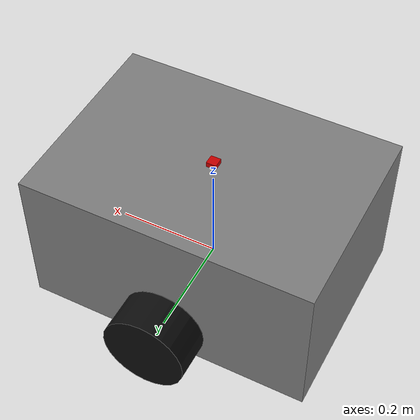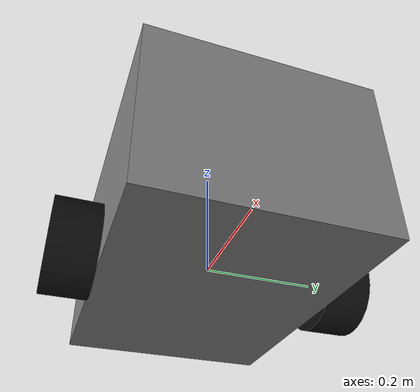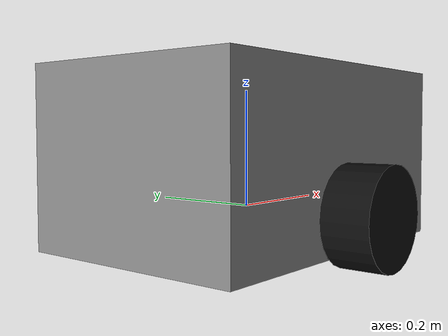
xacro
<?xml version="1.0"?>
<robot name="isimm_robot" xmlns:xacro="http://www.ros.org/wiki/xacro">

  <!-- TF : base_link est la RACINE (odom -> base_link est publié par RF2O).
       Pas de base_footprint : deux parents pour base_link casseraient TF. -->

  <!-- Dimensions robot -->
  <xacro:property name="robot_length" value="0.57"/>
  <xacro:property name="robot_width"  value="0.40"/>
  <xacro:property name="robot_total_height" value="0.30"/>

  <!-- Roues hoverboard -->
  <xacro:property name="wheel_radius" value="0.0825"/>
  <xacro:property name="wheel_width" value="0.08"/>
  <!-- Entraxe réel validé (= wheel_separation du motor controller) -->
  <xacro:property name="wheel_separation" value="0.48"/>

  <!-- base_link = centre de l'axe des roues, à wheel_radius du sol -->
  <xacro:property name="base_link_z" value="${wheel_radius}"/>

  <!-- LiDAR (hauteur depuis le sol) -->
  <xacro:property name="laser_height" value="0.24"/>
  <xacro:property name="laser_x" value="0.0"/>
  <xacro:property name="laser_y" value="0.0"/>
  <xacro:property name="laser_radius" value="0.038"/>
  <xacro:property name="laser_length" value="0.05"/>

  <!-- IMU (hauteur depuis le sol) -->
  <xacro:property name="imu_x" value="0.0"/>
  <xacro:property name="imu_y" value="0.0"/>
  <xacro:property name="imu_z" value="0.32"/>
  <xacro:property name="imu_size" value="0.02"/>

  <xacro:property name="body_mass" value="10.0"/>
  <xacro:property name="wheel_mass" value="1.0"/>

  <material name="isimm_grey"><color rgba="0.5 0.5 0.5 1.0"/></material>
  <material name="isimm_black"><color rgba="0.05 0.05 0.05 1.0"/></material>
  <material name="isimm_red"><color rgba="0.8 0.0 0.0 1.0"/></material>

  <xacro:macro name="box_inertia" params="mass x y z">
    <inertial>
      <mass value="${mass}"/>
      <inertia
        ixx="${mass / 12.0 * (y*y + z*z)}" ixy="0.0" ixz="0.0"
        iyy="${mass / 12.0 * (x*x + z*z)}" iyz="0.0"
        izz="${mass / 12.0 * (x*x + y*y)}"/>
    </inertial>
  </xacro:macro>

  <xacro:macro name="cylinder_inertia" params="mass r h">
    <inertial>
      <mass value="${mass}"/>
      <inertia
        ixx="${mass / 12.0 * (3*r*r + h*h)}" ixy="0.0" ixz="0.0"
        iyy="${mass / 12.0 * (3*r*r + h*h)}" iyz="0.0"
        izz="${mass * r*r / 2.0}"/>
    </inertial>
  </xacro:macro>

  <!-- ===================== base_link (racine) ===================== -->
  <link name="base_link">
    <visual>
      <origin xyz="0 0 ${robot_total_height/2 - base_link_z + 0.02}" rpy="0 0 0"/>
      <geometry><box size="${robot_length} ${robot_width} ${robot_total_height}"/></geometry>
      <material name="isimm_grey"/>
    </visual>
    <collision>
      <origin xyz="0 0 ${robot_total_height/2 - base_link_z + 0.02}" rpy="0 0 0"/>
      <geometry><box size="${robot_length} ${robot_width} ${robot_total_height}"/></geometry>
    </collision>
    <xacro:box_inertia mass="${body_mass}" x="${robot_length}" y="${robot_width}" z="${robot_total_height}"/>
  </link>

  <!-- Roues en joints fixes : pas d'encodeurs, pas de joint_states -->
  <xacro:macro name="wheel" params="prefix reflect">
    <link name="${prefix}_wheel_link">
      <visual>
        <origin xyz="0 0 0" rpy="${pi/2} 0 0"/>
        <geometry><cylinder radius="${wheel_radius}" length="${wheel_width}"/></geometry>
        <material name="isimm_black"/>
      </visual>
      <collision>
        <origin xyz="0 0 0" rpy="${pi/2} 0 0"/>
        <geometry><cylinder radius="${wheel_radius}" length="${wheel_width}"/></geometry>
      </collision>
      <xacro:cylinder_inertia mass="${wheel_mass}" r="${wheel_radius}" h="${wheel_width}"/>
    </link>
    <joint name="${prefix}_wheel_joint" type="fixed">
      <parent link="base_link"/>
      <child link="${prefix}_wheel_link"/>
      <origin xyz="0 ${reflect * wheel_separation / 2.0} 0" rpy="0 0 0"/>
    </joint>
  </xacro:macro>

  <xacro:wheel prefix="left" reflect="1"/>
  <xacro:wheel prefix="right" reflect="-1"/>

  <!-- ===================== LiDAR ===================== -->
  <link name="laser_link">
    <visual>
      <origin xyz="0 0 0" rpy="0 0 0"/>
      <geometry><cylinder radius="${laser_radius}" length="${laser_length}"/></geometry>
      <material name="isimm_black"/>
    </visual>
    <collision>
      <origin xyz="0 0 0" rpy="0 0 0"/>
      <geometry><cylinder radius="${laser_radius}" length="${laser_length}"/></geometry>
    </collision>
    <xacro:cylinder_inertia mass="0.2" r="${laser_radius}" h="${laser_length}"/>
  </link>
  <joint name="laser_joint" type="fixed">
    <parent link="base_link"/>
    <child link="laser_link"/>
    <origin xyz="${laser_x} ${laser_y} ${laser_height - base_link_z}" rpy="0 0 0"/>
  </joint>

  <!-- ===================== IMU ===================== -->
  <link name="imu_link">
    <visual>
      <origin xyz="0 0 0" rpy="0 0 0"/>
      <geometry><box size="${imu_size} ${imu_size} ${imu_size}"/></geometry>
      <material name="isimm_red"/>
    </visual>
    <collision>
      <origin xyz="0 0 0" rpy="0 0 0"/>
      <geometry><box size="${imu_size} ${imu_size} ${imu_size}"/></geometry>
    </collision>
    <xacro:box_inertia mass="0.05" x="${imu_size}" y="${imu_size}" z="${imu_size}"/>
  </link>
  <joint name="imu_joint" type="fixed">
    <parent link="base_link"/>
    <child link="imu_link"/>
    <origin xyz="${imu_x} ${imu_y} ${imu_z - base_link_z}" rpy="0 0 0"/>
  </joint>

</robot>
